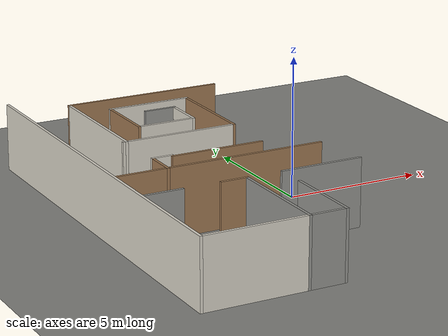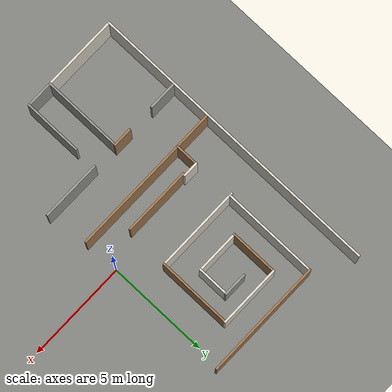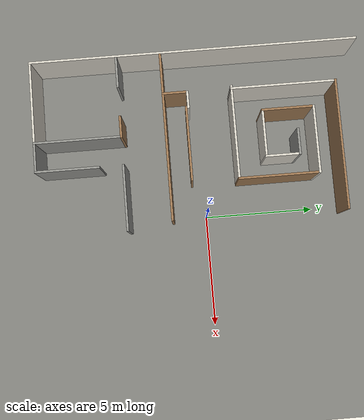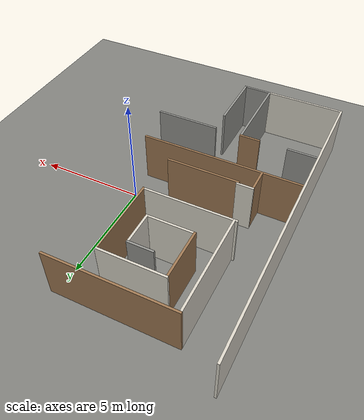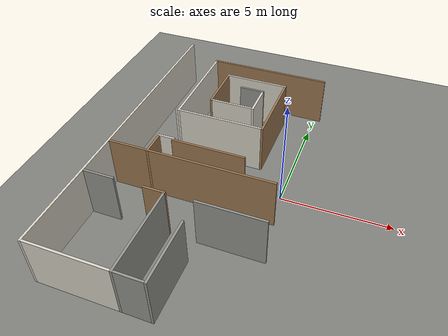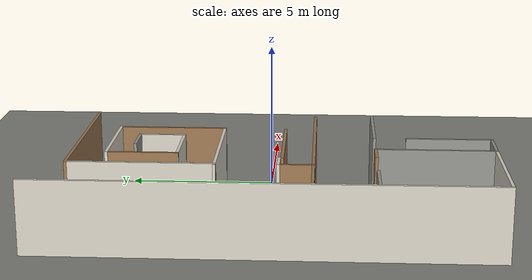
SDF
<sdf version="1.9">
 <world name="arena_world">
  <model name="ground_plane">
   <static>true</static>
   <link name="link">
    <collision name="collision">
     <geometry><plane><normal>0 0 1</normal><size>15.00 15.00</size></plane></geometry>
     <surface>
      <friction><ode><mu>0.8</mu><mu2>0.8</mu2></ode></friction>
      <contact><ode><kp>1e9</kp><kd>1.0</kd></ode></contact>
     </surface>
    </collision>
    <visual name="visual">
     <geometry><plane><normal>0 0 1</normal><size>15.00 15.00</size></plane></geometry>
     <material>
      <ambient>0.45 0.45 0.44 1</ambient>
      <diffuse>0.5 0.5 0.48 1</diffuse>
      <specular>0.15 0.15 0.15 1</specular>
      <pbr><metal><roughness>0.95</roughness><metalness>0.0</metalness></metal></pbr>
     </material>
    </visual>
   </link>
  </model>
  <model name="wall_001">
   <static>true</static>
   <pose>-7.4500 -0.0500 1.2200 0 0 0</pose>
   <link name="link">
    <collision name="collision">
     <geometry><box><size>0.1000 14.9000 2.4400</size></box></geometry>
     <surface>
      <friction><ode><mu>0.7</mu><mu2>0.7</mu2></ode></friction>
      <contact><ode><kp>1e9</kp><kd>1.0</kd><max_vel>0.1</max_vel><min_depth>0.001</min_depth></ode></contact>
      <bounce><restitution_coefficient>0.0</restitution_coefficient><threshold>1e6</threshold></bounce>
     </surface>
    </collision>
    <visual name="visual">
     <geometry><box><size>0.1000 14.9000 2.4400</size></box></geometry>
     <material>
      <ambient>0.82 0.80 0.75 1</ambient>
      <diffuse>0.85 0.83 0.78 1</diffuse>
      <specular>0.05 0.05 0.05 1</specular>
      <pbr><metal><roughness>0.85</roughness><metalness>0.0</metalness></metal></pbr>
     </material>
    </visual>
   </link>
  </model>
  <model name="wall_003">
   <static>true</static>
   <pose>-2.6500 6.2500 1.2200 0 0 0</pose>
   <link name="link">
    <collision name="collision">
     <geometry><box><size>5.9000 0.1000 2.4400</size></box></geometry>
     <surface>
      <friction><ode><mu>0.7</mu><mu2>0.7</mu2></ode></friction>
      <contact><ode><kp>1e9</kp><kd>1.0</kd><max_vel>0.1</max_vel><min_depth>0.001</min_depth></ode></contact>
      <bounce><restitution_coefficient>0.0</restitution_coefficient><threshold>1e6</threshold></bounce>
     </surface>
    </collision>
    <visual name="visual">
     <geometry><box><size>5.9000 0.1000 2.4400</size></box></geometry>
     <material>
      <ambient>0.55 0.42 0.28 1</ambient>
      <diffuse>0.62 0.47 0.32 1</diffuse>
      <specular>0.06 0.06 0.06 1</specular>
      <pbr><metal><roughness>0.7</roughness><metalness>0.0</metalness></metal></pbr>
     </material>
    </visual>
   </link>
  </model>
  <model name="wall_005">
   <static>true</static>
   <pose>-5.5500 3.8500 1.2200 0 0 0</pose>
   <link name="link">
    <collision name="collision">
     <geometry><box><size>0.1000 4.7000 2.4400</size></box></geometry>
     <surface>
      <friction><ode><mu>0.7</mu><mu2>0.7</mu2></ode></friction>
      <contact><ode><kp>1e9</kp><kd>1.0</kd><max_vel>0.1</max_vel><min_depth>0.001</min_depth></ode></contact>
      <bounce><restitution_coefficient>0.0</restitution_coefficient><threshold>1e6</threshold></bounce>
     </surface>
    </collision>
    <visual name="visual">
     <geometry><box><size>0.1000 4.7000 2.4400</size></box></geometry>
     <material>
      <ambient>0.82 0.80 0.75 1</ambient>
      <diffuse>0.85 0.83 0.78 1</diffuse>
      <specular>0.05 0.05 0.05 1</specular>
      <pbr><metal><roughness>0.85</roughness><metalness>0.0</metalness></metal></pbr>
     </material>
    </visual>
   </link>
  </model>
  <model name="wall_009">
   <static>true</static>
   <pose>-2.9500 5.1500 1.2200 0 0 0</pose>
   <link name="link">
    <collision name="collision">
     <geometry><box><size>3.1000 0.1000 2.4400</size></box></geometry>
     <surface>
      <friction><ode><mu>0.7</mu><mu2>0.7</mu2></ode></friction>
      <contact><ode><kp>1e9</kp><kd>1.0</kd><max_vel>0.1</max_vel><min_depth>0.001</min_depth></ode></contact>
      <bounce><restitution_coefficient>0.0</restitution_coefficient><threshold>1e6</threshold></bounce>
     </surface>
    </collision>
    <visual name="visual">
     <geometry><box><size>3.1000 0.1000 2.4400</size></box></geometry>
     <material>
      <ambient>0.82 0.80 0.75 1</ambient>
      <diffuse>0.85 0.83 0.78 1</diffuse>
      <specular>0.05 0.05 0.05 1</specular>
      <pbr><metal><roughness>0.85</roughness><metalness>0.0</metalness></metal></pbr>
     </material>
    </visual>
   </link>
  </model>
  <model name="wall_010">
   <static>true</static>
   <pose>-4.4500 3.9500 1.2200 0 0 0</pose>
   <link name="link">
    <collision name="collision">
     <geometry><box><size>0.1000 2.3000 2.4400</size></box></geometry>
     <surface>
      <friction><ode><mu>0.7</mu><mu2>0.7</mu2></ode></friction>
      <contact><ode><kp>1e9</kp><kd>1.0</kd><max_vel>0.1</max_vel><min_depth>0.001</min_depth></ode></contact>
      <bounce><restitution_coefficient>0.0</restitution_coefficient><threshold>1e6</threshold></bounce>
     </surface>
    </collision>
    <visual name="visual">
     <geometry><box><size>0.1000 2.3000 2.4400</size></box></geometry>
     <material>
      <ambient>0.55 0.42 0.28 1</ambient>
      <diffuse>0.62 0.47 0.32 1</diffuse>
      <specular>0.06 0.06 0.06 1</specular>
      <pbr><metal><roughness>0.7</roughness><metalness>0.0</metalness></metal></pbr>
     </material>
    </visual>
   </link>
  </model>
  <model name="wall_011">
   <static>true</static>
   <pose>-1.4500 3.3000 1.2200 0 0 0</pose>
   <link name="link">
    <collision name="collision">
     <geometry><box><size>0.1000 3.6000 2.4400</size></box></geometry>
     <surface>
      <friction><ode><mu>0.7</mu><mu2>0.7</mu2></ode></friction>
      <contact><ode><kp>1e9</kp><kd>1.0</kd><max_vel>0.1</max_vel><min_depth>0.001</min_depth></ode></contact>
      <bounce><restitution_coefficient>0.0</restitution_coefficient><threshold>1e6</threshold></bounce>
     </surface>
    </collision>
    <visual name="visual">
     <geometry><box><size>0.1000 3.6000 2.4400</size></box></geometry>
     <material>
      <ambient>0.55 0.42 0.28 1</ambient>
      <diffuse>0.62 0.47 0.32 1</diffuse>
      <specular>0.06 0.06 0.06 1</specular>
      <pbr><metal><roughness>0.7</roughness><metalness>0.0</metalness></metal></pbr>
     </material>
    </visual>
   </link>
  </model>
  <model name="wall_015">
   <static>true</static>
   <pose>-2.9000 4.3500 1.2200 0 0 0</pose>
   <link name="link">
    <collision name="collision">
     <geometry><box><size>1.2000 0.1000 2.4400</size></box></geometry>
     <surface>
      <friction><ode><mu>0.7</mu><mu2>0.7</mu2></ode></friction>
      <contact><ode><kp>1e9</kp><kd>1.0</kd><max_vel>0.1</max_vel><min_depth>0.001</min_depth></ode></contact>
      <bounce><restitution_coefficient>0.0</restitution_coefficient><threshold>1e6</threshold></bounce>
     </surface>
    </collision>
    <visual name="visual">
     <geometry><box><size>1.2000 0.1000 2.4400</size></box></geometry>
     <material>
      <ambient>0.55 0.55 0.53 1</ambient>
      <diffuse>0.58 0.58 0.56 1</diffuse>
      <specular>0.08 0.08 0.08 1</specular>
      <pbr><metal><roughness>0.9</roughness><metalness>0.0</metalness></metal></pbr>
     </material>
    </visual>
   </link>
  </model>
  <model name="wall_016">
   <static>true</static>
   <pose>-2.3500 3.5500 1.2200 0 0 0</pose>
   <link name="link">
    <collision name="collision">
     <geometry><box><size>0.1000 1.5000 2.4400</size></box></geometry>
     <surface>
      <friction><ode><mu>0.7</mu><mu2>0.7</mu2></ode></friction>
      <contact><ode><kp>1e9</kp><kd>1.0</kd><max_vel>0.1</max_vel><min_depth>0.001</min_depth></ode></contact>
      <bounce><restitution_coefficient>0.0</restitution_coefficient><threshold>1e6</threshold></bounce>
     </surface>
    </collision>
    <visual name="visual">
     <geometry><box><size>0.1000 1.5000 2.4400</size></box></geometry>
     <material>
      <ambient>0.82 0.80 0.75 1</ambient>
      <diffuse>0.85 0.83 0.78 1</diffuse>
      <specular>0.05 0.05 0.05 1</specular>
      <pbr><metal><roughness>0.85</roughness><metalness>0.0</metalness></metal></pbr>
     </material>
    </visual>
   </link>
  </model>
  <model name="wall_017">
   <static>true</static>
   <pose>-3.4000 2.8500 1.2200 0 0 0</pose>
   <link name="link">
    <collision name="collision">
     <geometry><box><size>2.0000 0.1000 2.4400</size></box></geometry>
     <surface>
      <friction><ode><mu>0.7</mu><mu2>0.7</mu2></ode></friction>
      <contact><ode><kp>1e9</kp><kd>1.0</kd><max_vel>0.1</max_vel><min_depth>0.001</min_depth></ode></contact>
      <bounce><restitution_coefficient>0.0</restitution_coefficient><threshold>1e6</threshold></bounce>
     </surface>
    </collision>
    <visual name="visual">
     <geometry><box><size>2.0000 0.1000 2.4400</size></box></geometry>
     <material>
      <ambient>0.82 0.80 0.75 1</ambient>
      <diffuse>0.85 0.83 0.78 1</diffuse>
      <specular>0.05 0.05 0.05 1</specular>
      <pbr><metal><roughness>0.85</roughness><metalness>0.0</metalness></metal></pbr>
     </material>
    </visual>
   </link>
  </model>
  <model name="wall_019">
   <static>true</static>
   <pose>-5.6500 1.5500 1.2200 0 0 0</pose>
   <link name="link">
    <collision name="collision">
     <geometry><box><size>0.1000 0.1000 2.4400</size></box></geometry>
     <surface>
      <friction><ode><mu>0.7</mu><mu2>0.7</mu2></ode></friction>
      <contact><ode><kp>1e9</kp><kd>1.0</kd><max_vel>0.1</max_vel><min_depth>0.001</min_depth></ode></contact>
      <bounce><restitution_coefficient>0.0</restitution_coefficient><threshold>1e6</threshold></bounce>
     </surface>
    </collision>
    <visual name="visual">
     <geometry><box><size>0.1000 0.1000 2.4400</size></box></geometry>
     <material>
      <ambient>0.82 0.80 0.75 1</ambient>
      <diffuse>0.85 0.83 0.78 1</diffuse>
      <specular>0.05 0.05 0.05 1</specular>
      <pbr><metal><roughness>0.85</roughness><metalness>0.0</metalness></metal></pbr>
     </material>
    </visual>
   </link>
  </model>
  <model name="wall_020">
   <static>true</static>
   <pose>-3.5000 1.5500 1.2200 0 0 0</pose>
   <link name="link">
    <collision name="collision">
     <geometry><box><size>4.0000 0.1000 2.4400</size></box></geometry>
     <surface>
      <friction><ode><mu>0.7</mu><mu2>0.7</mu2></ode></friction>
      <contact><ode><kp>1e9</kp><kd>1.0</kd><max_vel>0.1</max_vel><min_depth>0.001</min_depth></ode></contact>
      <bounce><restitution_coefficient>0.0</restitution_coefficient><threshold>1e6</threshold></bounce>
     </surface>
    </collision>
    <visual name="visual">
     <geometry><box><size>4.0000 0.1000 2.4400</size></box></geometry>
     <material>
      <ambient>0.82 0.80 0.75 1</ambient>
      <diffuse>0.85 0.83 0.78 1</diffuse>
      <specular>0.05 0.05 0.05 1</specular>
      <pbr><metal><roughness>0.85</roughness><metalness>0.0</metalness></metal></pbr>
     </material>
    </visual>
   </link>
  </model>
  <model name="wall_025">
   <static>true</static>
   <pose>-5.2000 -0.4500 1.2200 0 0 0</pose>
   <link name="link">
    <collision name="collision">
     <geometry><box><size>0.8000 0.1000 2.4400</size></box></geometry>
     <surface>
      <friction><ode><mu>0.7</mu><mu2>0.7</mu2></ode></friction>
      <contact><ode><kp>1e9</kp><kd>1.0</kd><max_vel>0.1</max_vel><min_depth>0.001</min_depth></ode></contact>
      <bounce><restitution_coefficient>0.0</restitution_coefficient><threshold>1e6</threshold></bounce>
     </surface>
    </collision>
    <visual name="visual">
     <geometry><box><size>0.8000 0.1000 2.4400</size></box></geometry>
     <material>
      <ambient>0.82 0.80 0.75 1</ambient>
      <diffuse>0.85 0.83 0.78 1</diffuse>
      <specular>0.05 0.05 0.05 1</specular>
      <pbr><metal><roughness>0.85</roughness><metalness>0.0</metalness></metal></pbr>
     </material>
    </visual>
   </link>
  </model>
  <model name="wall_026">
   <static>true</static>
   <pose>-5.5500 -1.0500 1.2200 0 0 0</pose>
   <link name="link">
    <collision name="collision">
     <geometry><box><size>0.1000 1.1000 2.4400</size></box></geometry>
     <surface>
      <friction><ode><mu>0.7</mu><mu2>0.7</mu2></ode></friction>
      <contact><ode><kp>1e9</kp><kd>1.0</kd><max_vel>0.1</max_vel><min_depth>0.001</min_depth></ode></contact>
      <bounce><restitution_coefficient>0.0</restitution_coefficient><threshold>1e6</threshold></bounce>
     </surface>
    </collision>
    <visual name="visual">
     <geometry><box><size>0.1000 1.1000 2.4400</size></box></geometry>
     <material>
      <ambient>0.55 0.42 0.28 1</ambient>
      <diffuse>0.62 0.47 0.32 1</diffuse>
      <specular>0.06 0.06 0.06 1</specular>
      <pbr><metal><roughness>0.7</roughness><metalness>0.0</metalness></metal></pbr>
     </material>
    </visual>
   </link>
  </model>
  <model name="wall_027">
   <static>true</static>
   <pose>-3.2000 -0.5500 1.2200 0 0 0</pose>
   <link name="link">
    <collision name="collision">
     <geometry><box><size>3.4000 0.1000 2.4400</size></box></geometry>
     <surface>
      <friction><ode><mu>0.7</mu><mu2>0.7</mu2></ode></friction>
      <contact><ode><kp>1e9</kp><kd>1.0</kd><max_vel>0.1</max_vel><min_depth>0.001</min_depth></ode></contact>
      <bounce><restitution_coefficient>0.0</restitution_coefficient><threshold>1e6</threshold></bounce>
     </surface>
    </collision>
    <visual name="visual">
     <geometry><box><size>3.4000 0.1000 2.4400</size></box></geometry>
     <material>
      <ambient>0.55 0.42 0.28 1</ambient>
      <diffuse>0.62 0.47 0.32 1</diffuse>
      <specular>0.06 0.06 0.06 1</specular>
      <pbr><metal><roughness>0.7</roughness><metalness>0.0</metalness></metal></pbr>
     </material>
    </visual>
   </link>
  </model>
  <model name="wall_028">
   <static>true</static>
   <pose>-6.5000 -1.5500 1.2200 0 0 0</pose>
   <link name="link">
    <collision name="collision">
     <geometry><box><size>1.8000 0.1000 2.4400</size></box></geometry>
     <surface>
      <friction><ode><mu>0.7</mu><mu2>0.7</mu2></ode></friction>
      <contact><ode><kp>1e9</kp><kd>1.0</kd><max_vel>0.1</max_vel><min_depth>0.001</min_depth></ode></contact>
      <bounce><restitution_coefficient>0.0</restitution_coefficient><threshold>1e6</threshold></bounce>
     </surface>
    </collision>
    <visual name="visual">
     <geometry><box><size>1.8000 0.1000 2.4400</size></box></geometry>
     <material>
      <ambient>0.55 0.42 0.28 1</ambient>
      <diffuse>0.62 0.47 0.32 1</diffuse>
      <specular>0.06 0.06 0.06 1</specular>
      <pbr><metal><roughness>0.7</roughness><metalness>0.0</metalness></metal></pbr>
     </material>
    </visual>
   </link>
  </model>
  <model name="wall_029">
   <static>true</static>
   <pose>-2.6500 -1.5500 1.2200 0 0 0</pose>
   <link name="link">
    <collision name="collision">
     <geometry><box><size>5.7000 0.1000 2.4400</size></box></geometry>
     <surface>
      <friction><ode><mu>0.7</mu><mu2>0.7</mu2></ode></friction>
      <contact><ode><kp>1e9</kp><kd>1.0</kd><max_vel>0.1</max_vel><min_depth>0.001</min_depth></ode></contact>
      <bounce><restitution_coefficient>0.0</restitution_coefficient><threshold>1e6</threshold></bounce>
     </surface>
    </collision>
    <visual name="visual">
     <geometry><box><size>5.7000 0.1000 2.4400</size></box></geometry>
     <material>
      <ambient>0.55 0.42 0.28 1</ambient>
      <diffuse>0.62 0.47 0.32 1</diffuse>
      <specular>0.06 0.06 0.06 1</specular>
      <pbr><metal><roughness>0.7</roughness><metalness>0.0</metalness></metal></pbr>
     </material>
    </visual>
   </link>
  </model>
  <model name="wall_032">
   <static>true</static>
   <pose>-6.7000 -3.5500 1.2200 0 0 0</pose>
   <link name="link">
    <collision name="collision">
     <geometry><box><size>1.4000 0.1000 2.4400</size></box></geometry>
     <surface>
      <friction><ode><mu>0.7</mu><mu2>0.7</mu2></ode></friction>
      <contact><ode><kp>1e9</kp><kd>1.0</kd><max_vel>0.1</max_vel><min_depth>0.001</min_depth></ode></contact>
      <bounce><restitution_coefficient>0.0</restitution_coefficient><threshold>1e6</threshold></bounce>
     </surface>
    </collision>
    <visual name="visual">
     <geometry><box><size>1.4000 0.1000 2.4400</size></box></geometry>
     <material>
      <ambient>0.55 0.55 0.53 1</ambient>
      <diffuse>0.58 0.58 0.56 1</diffuse>
      <specular>0.08 0.08 0.08 1</specular>
      <pbr><metal><roughness>0.9</roughness><metalness>0.0</metalness></metal></pbr>
     </material>
    </visual>
   </link>
  </model>
  <model name="wall_033">
   <static>true</static>
   <pose>-4.2000 -3.5500 1.2200 0 0 0</pose>
   <link name="link">
    <collision name="collision">
     <geometry><box><size>1.0000 0.1000 2.4400</size></box></geometry>
     <surface>
      <friction><ode><mu>0.7</mu><mu2>0.7</mu2></ode></friction>
      <contact><ode><kp>1e9</kp><kd>1.0</kd><max_vel>0.1</max_vel><min_depth>0.001</min_depth></ode></contact>
      <bounce><restitution_coefficient>0.0</restitution_coefficient><threshold>1e6</threshold></bounce>
     </surface>
    </collision>
    <visual name="visual">
     <geometry><box><size>1.0000 0.1000 2.4400</size></box></geometry>
     <material>
      <ambient>0.55 0.42 0.28 1</ambient>
      <diffuse>0.62 0.47 0.32 1</diffuse>
      <specular>0.06 0.06 0.06 1</specular>
      <pbr><metal><roughness>0.7</roughness><metalness>0.0</metalness></metal></pbr>
     </material>
    </visual>
   </link>
  </model>
  <model name="wall_034">
   <static>true</static>
   <pose>-1.0000 -3.5500 1.2200 0 0 0</pose>
   <link name="link">
    <collision name="collision">
     <geometry><box><size>3.0000 0.1000 2.4400</size></box></geometry>
     <surface>
      <friction><ode><mu>0.7</mu><mu2>0.7</mu2></ode></friction>
      <contact><ode><kp>1e9</kp><kd>1.0</kd><max_vel>0.1</max_vel><min_depth>0.001</min_depth></ode></contact>
      <bounce><restitution_coefficient>0.0</restitution_coefficient><threshold>1e6</threshold></bounce>
     </surface>
    </collision>
    <visual name="visual">
     <geometry><box><size>3.0000 0.1000 2.4400</size></box></geometry>
     <material>
      <ambient>0.55 0.55 0.53 1</ambient>
      <diffuse>0.58 0.58 0.56 1</diffuse>
      <specular>0.08 0.08 0.08 1</specular>
      <pbr><metal><roughness>0.9</roughness><metalness>0.0</metalness></metal></pbr>
     </material>
    </visual>
   </link>
  </model>
  <model name="wall_038">
   <static>true</static>
   <pose>-3.7500 -5.5500 1.2200 0 0 0</pose>
   <link name="link">
    <collision name="collision">
     <geometry><box><size>0.1000 3.9000 2.4400</size></box></geometry>
     <surface>
      <friction><ode><mu>0.7</mu><mu2>0.7</mu2></ode></friction>
      <contact><ode><kp>1e9</kp><kd>1.0</kd><max_vel>0.1</max_vel><min_depth>0.001</min_depth></ode></contact>
      <bounce><restitution_coefficient>0.0</restitution_coefficient><threshold>1e6</threshold></bounce>
     </surface>
    </collision>
    <visual name="visual">
     <geometry><box><size>0.1000 3.9000 2.4400</size></box></geometry>
     <material>
      <ambient>0.55 0.55 0.53 1</ambient>
      <diffuse>0.58 0.58 0.56 1</diffuse>
      <specular>0.08 0.08 0.08 1</specular>
      <pbr><metal><roughness>0.9</roughness><metalness>0.0</metalness></metal></pbr>
     </material>
    </visual>
   </link>
  </model>
  <model name="wall_040">
   <static>true</static>
   <pose>-2.4500 -6.0500 1.2200 0 0 0</pose>
   <link name="link">
    <collision name="collision">
     <geometry><box><size>0.1000 2.9000 2.4400</size></box></geometry>
     <surface>
      <friction><ode><mu>0.7</mu><mu2>0.7</mu2></ode></friction>
      <contact><ode><kp>1e9</kp><kd>1.0</kd><max_vel>0.1</max_vel><min_depth>0.001</min_depth></ode></contact>
      <bounce><restitution_coefficient>0.0</restitution_coefficient><threshold>1e6</threshold></bounce>
     </surface>
    </collision>
    <visual name="visual">
     <geometry><box><size>0.1000 2.9000 2.4400</size></box></geometry>
     <material>
      <ambient>0.55 0.55 0.53 1</ambient>
      <diffuse>0.58 0.58 0.56 1</diffuse>
      <specular>0.08 0.08 0.08 1</specular>
      <pbr><metal><roughness>0.9</roughness><metalness>0.0</metalness></metal></pbr>
     </material>
    </visual>
   </link>
  </model>
  <model name="wall_042">
   <static>true</static>
   <pose>-5.6000 -7.4500 1.2200 0 0 0</pose>
   <link name="link">
    <collision name="collision">
     <geometry><box><size>3.6000 0.1000 2.4400</size></box></geometry>
     <surface>
      <friction><ode><mu>0.7</mu><mu2>0.7</mu2></ode></friction>
      <contact><ode><kp>1e9</kp><kd>1.0</kd><max_vel>0.1</max_vel><min_depth>0.001</min_depth></ode></contact>
      <bounce><restitution_coefficient>0.0</restitution_coefficient><threshold>1e6</threshold></bounce>
     </surface>
    </collision>
    <visual name="visual">
     <geometry><box><size>3.6000 0.1000 2.4400</size></box></geometry>
     <material>
      <ambient>0.82 0.80 0.75 1</ambient>
      <diffuse>0.85 0.83 0.78 1</diffuse>
      <specular>0.05 0.05 0.05 1</specular>
      <pbr><metal><roughness>0.85</roughness><metalness>0.0</metalness></metal></pbr>
     </material>
    </visual>
   </link>
  </model>
  <model name="wall_043">
   <static>true</static>
   <pose>-3.1000 -7.4500 1.2200 0 0 0</pose>
   <link name="link">
    <collision name="collision">
     <geometry><box><size>1.2000 0.1000 2.4400</size></box></geometry>
     <surface>
      <friction><ode><mu>0.7</mu><mu2>0.7</mu2></ode></friction>
      <contact><ode><kp>1e9</kp><kd>1.0</kd><max_vel>0.1</max_vel><min_depth>0.001</min_depth></ode></contact>
      <bounce><restitution_coefficient>0.0</restitution_coefficient><threshold>1e6</threshold></bounce>
     </surface>
    </collision>
    <visual name="visual">
     <geometry><box><size>1.2000 0.1000 2.4400</size></box></geometry>
     <material>
      <ambient>0.55 0.55 0.53 1</ambient>
      <diffuse>0.58 0.58 0.56 1</diffuse>
      <specular>0.08 0.08 0.08 1</specular>
      <pbr><metal><roughness>0.9</roughness><metalness>0.0</metalness></metal></pbr>
     </material>
    </visual>
   </link>
  </model>
 </world>
</sdf>
